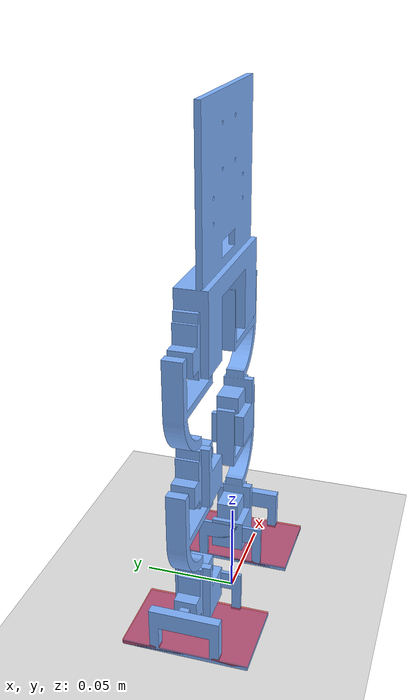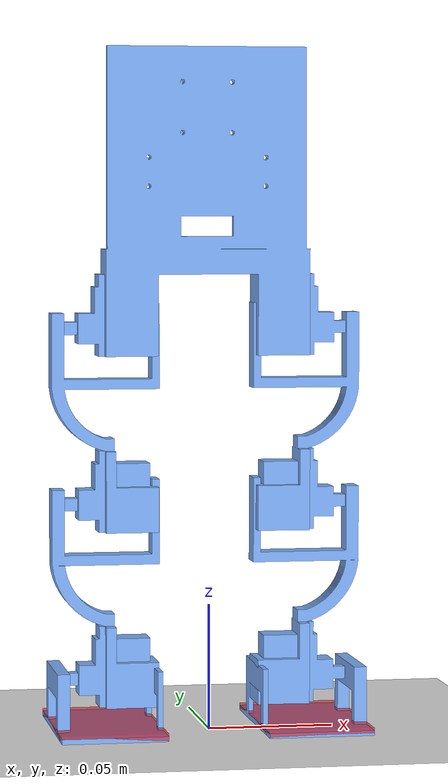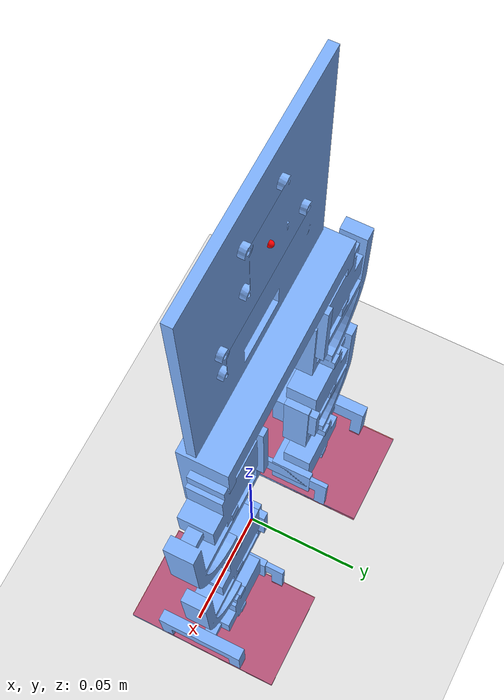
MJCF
<?xml version="1.0" ?>
<mujoco model="assemblyDerived_v17">
  <compiler angle="radian"/>

  <default>
    <mesh scale="0.001 0.001 0.001"/>
    <geom rgba="0.5 0.7 1.0 1" contype="0" conaffinity="0"/>
    <joint damping="0.002" range="-1.5 1.5" armature="0.0005"/>
    <position kp="0.5" kv="0.02" forcelimited="true" forcerange="-0.2 0.2" ctrllimited="true" ctrlrange="-1.57 1.57"/>
  </default>
  <asset>
    <mesh file="meshes/derivedBody_v1_1.stl" name="derivedBody_v1_1_mesh"/>
    <mesh file="meshes/servo_v9_2.stl" name="servo_v9_2_mesh"/>
    <mesh file="meshes/derivedLeg_v1(Mirror)_1.stl" name="derivedLeg_v1(Mirror)_1_mesh"/>
    <mesh file="meshes/servo_v9_4.stl" name="servo_v9_4_mesh"/>
    <mesh file="meshes/derivedLeg_v1(Mirror)_2.stl" name="derivedLeg_v1(Mirror)_2_mesh"/>
    <mesh file="meshes/servo_v9_6.stl" name="servo_v9_6_mesh"/>
    <mesh file="meshes/derivedFoot_v2(Mirror)_1.stl" name="derivedFoot_v2(Mirror)_1_mesh"/>
    <mesh file="meshes/servo_v9_1.stl" name="servo_v9_1_mesh"/>
    <mesh file="meshes/derivedLeg_v2_1.stl" name="derivedLeg_v2_1_mesh"/>
    <mesh file="meshes/servo_v9_3.stl" name="servo_v9_3_mesh"/>
    <mesh file="meshes/derivedLeg_v2_2.stl" name="derivedLeg_v2_2_mesh"/>
    <mesh file="meshes/servo_v9_5.stl" name="servo_v9_5_mesh"/>
    <mesh file="meshes/derivedFoot_v2_1.stl" name="derivedFoot_v2_1_mesh"/>
  </asset>
  <actuator>
    <position name="derivedLeg_v1(Mirror)_1Revolute_4" joint="derivedLeg_v1(Mirror)_1Revolute_4"/>
    <position name="derivedLeg_v1(Mirror)_2Revolute_8" joint="derivedLeg_v1(Mirror)_2Revolute_8"/>
    <position name="derivedFoot_v2(Mirror)_1Revolute_12" joint="derivedFoot_v2(Mirror)_1Revolute_12"/>
    <position name="derivedLeg_v2_1Revolute_3" joint="derivedLeg_v2_1Revolute_3"/>
    <position name="derivedLeg_v2_2Revolute_7" joint="derivedLeg_v2_2Revolute_7"/>
    <position name="derivedFoot_v2_1Revolute_11" joint="derivedFoot_v2_1Revolute_11"/>
  </actuator>

  <sensor>
    <gyro name="gyro" site="imu_site"/>
    <accelerometer name="accel" site="imu_site"/>
    <framequat name="orientation" objtype="site" objname="imu_site"/>
  </sensor>

  <worldbody>
    <geom name="floor" size="0 0 .05" type="plane" condim="3" rgba="0.9 0.9 0.9 1" contype="1" conaffinity="1"/>
    <light mode="targetbodycom" target="body" diffuse=".8 .8 .8" specular="0.3 0.3 0.3" pos="0 -6 4" cutoff="30"/>
    <body name="body" pos="0 0 0.149091">
      <freejoint name="root"/>
      <site name="imu_site" pos="0 0.0085 0.097" size="0.001" rgba="1 0 0 1"/>
      <geom  mass="0.015" type="mesh" mesh="derivedBody_v1_1_mesh"/>
      <body name="servo_v9_2">
        <geom mass="0.013" type="mesh" mesh="servo_v9_2_mesh"/>
        <body name="derivedLeg_v1(Mirror)_1">
          <joint axis="1 0 0" name="derivedLeg_v1(Mirror)_1Revolute_4" type="hinge" pos="0.0570 0.0100 0.0109"/>
          <geom mass="0.00686" type="mesh" mesh="derivedLeg_v1(Mirror)_1_mesh"/>
          <body name="servo_v9_4">
            <geom mass="0.013" type="mesh" mesh="servo_v9_4_mesh"/>
            <body name="derivedLeg_v1(Mirror)_2">
              <joint axis="1 0 0" name="derivedLeg_v1(Mirror)_2Revolute_8" type="hinge" pos="0.0570 0.0100 -0.0591"/>
              <geom mass="0.00686" type="mesh" mesh="derivedLeg_v1(Mirror)_2_mesh"/>
              <body name="servo_v9_6">
                <geom mass="0.013" type="mesh" mesh="servo_v9_6_mesh"/>
                <body name="derivedFoot_v2(Mirror)_1">
                  <joint axis="1 0 0" name="derivedFoot_v2(Mirror)_1Revolute_12" type="hinge" pos="0.0570 0.0100 -0.1291"/>
                  <geom mass="0.01014" type="mesh" mesh="derivedFoot_v2(Mirror)_1_mesh"/>
                  <geom type="box"  pos="0.041 0.0075 -0.147591" size="0.021 0.0335 0.0015" rgba="1 0 0 0.5" contype="1" conaffinity="1" density="500" friction="1.5 0.1 0.001" solref="0.02 1"/>
                </body>
              </body>
            </body>
          </body>
        </body>
      </body>
      <body name="servo_v9_1">
        <geom mass="0.013" type="mesh" mesh="servo_v9_1_mesh"/>
        <body name="derivedLeg_v2_1">
          <joint axis="1 0 0" name="derivedLeg_v2_1Revolute_3" type="hinge" pos="-0.0570 0.0100 0.0109"/>
          <geom mass="0.00686" type="mesh" mesh="derivedLeg_v2_1_mesh"/>
          <body name="servo_v9_3">
            <geom mass="0.013" type="mesh" mesh="servo_v9_3_mesh"/>
            <body name="derivedLeg_v2_2">
              <joint axis="1 0 0" name="derivedLeg_v2_2Revolute_7" type="hinge" pos="-0.0570 0.0100 -0.0591"/>
              <geom mass="0.00686" type="mesh" mesh="derivedLeg_v2_2_mesh"/>
              <body name="servo_v9_5">
                <geom mass="0.013" type="mesh" mesh="servo_v9_5_mesh"/>
                <body name="derivedFoot_v2_1">
                  <joint axis="1 0 0" name="derivedFoot_v2_1Revolute_11" type="hinge" pos="-0.0570 0.0100 -0.1291"/>
                  <geom mass="0.01014" type="mesh" mesh="derivedFoot_v2_1_mesh"/>
                  <geom type="box" pos="-0.041 0.0075 -0.147591" size="0.021 0.0335 0.0015" rgba="1 0 0 0.5" contype="1" conaffinity="1" density="500" friction="1.5 0.1 0.001" solref="0.02 1"/>
                </body>
              </body>
            </body>
          </body>
        </body>
      </body>
    </body>
    <camera name="track" mode="trackcom" pos="0 -2.1 0.5" xyaxes="1 0 0 0 0.2 1" target="body"/>
  </worldbody>
</mujoco>
